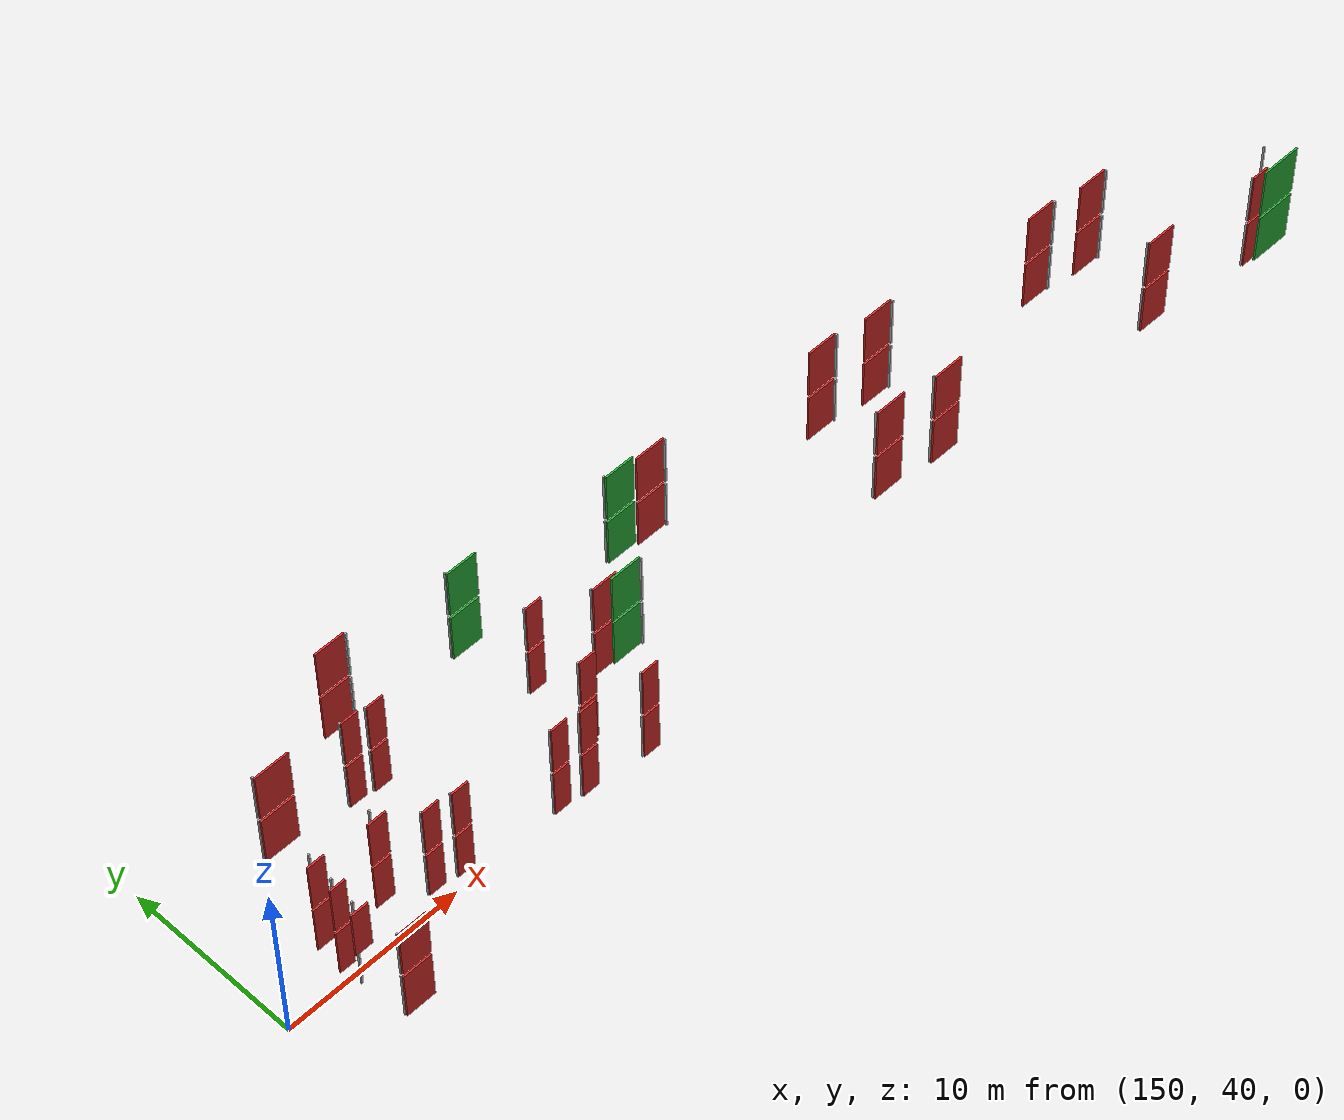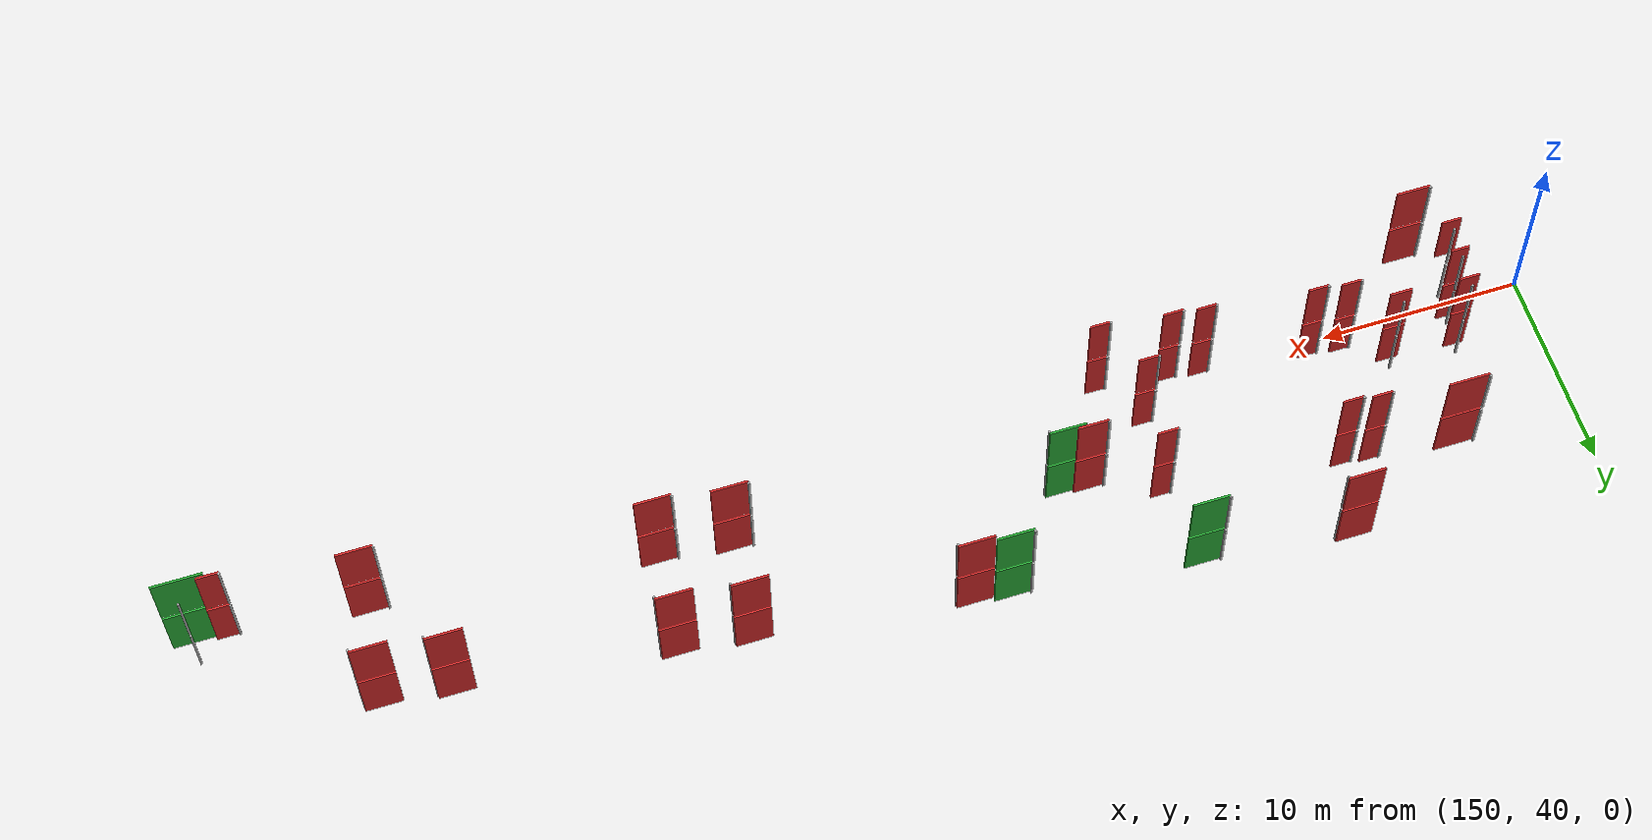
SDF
<sdf version="1.6">
 <world name="default">
  <model name="pivot_153.8_39.5_0.0">
   <static>true</static>
   <pose>153.8300000000163 39.49000000022352 1.5 0 0 0</pose>
   <link name="pivot_link">
    <visual name="pivot_visual"><geometry><box><size>0.1 0.1 3</size></box></geometry></visual>
   </link>
  </model>
  <model name="pivot_166.0_40.0_0.0">
   <static>true</static>
   <pose>166.0100000000093 39.97000000020489 1.5 0 0 0</pose>
   <link name="pivot_link">
    <visual name="pivot_visual"><geometry><box><size>0.1 0.1 3</size></box></geometry></visual>
   </link>
  </model>
  <model name="door_166.0_40.0_0.0">
   <static>false</static>
   <pose>166.50500000000466 39.91000000014901 1.5 0 0 0</pose>
   <link name="door_link">
    <gravity>false</gravity>
    <visual name="door_visual">
     <geometry><box><size>0.9972462083198822 0.1 3</size></box></geometry>
     <material>
      <script><uri>file://media/materials/scripts/gazebo.material</uri><name>Gazebo/Red</name></script>
     </material>
    </visual>
   </link>
  </model>
  <model name="pivot_160.6_40.6_0.0">
   <static>true</static>
   <pose>160.64000000001397 40.62000000011176 1.5 0 0 0</pose>
   <link name="pivot_link">
    <visual name="pivot_visual"><geometry><box><size>0.1 0.1 3</size></box></geometry></visual>
   </link>
  </model>
  <model name="door_160.6_40.6_0.0">
   <static>false</static>
   <pose>161.1350000000093 40.56000000005588 1.5 0 0 0</pose>
   <link name="door_link">
    <gravity>false</gravity>
    <visual name="door_visual">
     <geometry><box><size>0.9972462083198822 0.1 3</size></box></geometry>
     <material>
      <script><uri>file://media/materials/scripts/gazebo.material</uri><name>Gazebo/Red</name></script>
     </material>
    </visual>
   </link>
  </model>
  <model name="pivot_191.9_47.0_0.0">
   <static>true</static>
   <pose>191.86999999999534 46.95999999996275 1.5 0 0 0</pose>
   <link name="pivot_link">
    <visual name="pivot_visual"><geometry><box><size>0.1 0.1 3</size></box></geometry></visual>
   </link>
  </model>
  <model name="door_191.9_47.0_0.0">
   <static>false</static>
   <pose>190.97500000000582 47.06499999994412 1.5 0 0 0</pose>
   <link name="door_link">
    <gravity>false</gravity>
    <visual name="door_visual">
     <geometry><box><size>1.8022763383869123 0.1 3</size></box></geometry>
     <material>
      <script><uri>file://media/materials/scripts/gazebo.material</uri><name>Gazebo/Red</name></script>
     </material>
    </visual>
   </link>
  </model>
  <model name="pivot_181.5_48.2_0.0">
   <static>true</static>
   <pose>181.53000000002794 48.200000000186265 1.5 0 0 0</pose>
   <link name="pivot_link">
    <visual name="pivot_visual"><geometry><box><size>0.1 0.1 3</size></box></geometry></visual>
   </link>
  </model>
  <model name="door_181.5_48.2_0.0">
   <static>false</static>
   <pose>180.6350000000093 48.31000000005588 1.5 0 0 0</pose>
   <link name="door_link">
    <gravity>false</gravity>
    <visual name="door_visual">
     <geometry><box><size>1.8034688796923075 0.1 3</size></box></geometry>
     <material>
      <script><uri>file://media/materials/scripts/gazebo.material</uri><name>Gazebo/Red</name></script>
     </material>
    </visual>
   </link>
  </model>
  <model name="pivot_154.0_41.0_0.0">
   <static>true</static>
   <pose>154.02000000001863 41.02000000001863 1.5 0 0 0</pose>
   <link name="pivot_link">
    <visual name="pivot_visual"><geometry><box><size>0.1 0.1 3</size></box></geometry></visual>
   </link>
  </model>
  <model name="door_154.0_41.0_0.0">
   <static>false</static>
   <pose>153.9649999999965 40.574999999953434 1.5 0 0 0</pose>
   <link name="door_link">
    <gravity>false</gravity>
    <visual name="door_visual">
     <geometry><box><size>0.8967719889926413 0.1 3</size></box></geometry>
     <material>
      <script><uri>file://media/materials/scripts/gazebo.material</uri><name>Gazebo/Red</name></script>
     </material>
    </visual>
   </link>
  </model>
  <model name="pivot_167.6_39.8_0.0">
   <static>true</static>
   <pose>167.59999999997672 39.77999999979511 1.5 0 0 0</pose>
   <link name="pivot_link">
    <visual name="pivot_visual"><geometry><box><size>0.1 0.1 3</size></box></geometry></visual>
   </link>
  </model>
  <model name="door_167.6_39.8_0.0">
   <static>false</static>
   <pose>168.09500000000116 39.71999999997206 1.5 0 0 0</pose>
   <link name="door_link">
    <gravity>false</gravity>
    <visual name="door_visual">
     <geometry><box><size>0.9972462083216332 0.1 3</size></box></geometry>
     <material>
      <script><uri>file://media/materials/scripts/gazebo.material</uri><name>Gazebo/Red</name></script>
     </material>
    </visual>
   </link>
  </model>
  <model name="pivot_195.3_46.5_0.0">
   <static>true</static>
   <pose>195.30999999999767 46.54000000003725 1.5 0 0 0</pose>
   <link name="pivot_link">
    <visual name="pivot_visual"><geometry><box><size>0.1 0.1 3</size></box></geometry></visual>
   </link>
  </model>
  <model name="door_195.3_46.5_0.0">
   <static>false</static>
   <pose>194.41500000000815 46.64999999990687 1.5 0 0 0</pose>
   <link name="door_link">
    <gravity>false</gravity>
    <visual name="door_visual">
     <geometry><box><size>1.8034688796345346 0.1 3</size></box></geometry>
     <material>
      <script><uri>file://media/materials/scripts/gazebo.material</uri><name>Gazebo/Red</name></script>
     </material>
    </visual>
   </link>
  </model>
  <model name="pivot_205.6_45.3_0.0">
   <static>true</static>
   <pose>205.64000000001397 45.299999999813735 1.5 0 0 0</pose>
   <link name="pivot_link">
    <visual name="pivot_visual"><geometry><box><size>0.1 0.1 3</size></box></geometry></visual>
   </link>
  </model>
  <model name="door_205.6_45.3_0.0">
   <static>false</static>
   <pose>204.74499999999534 45.40499999979511 1.5 0 0 0</pose>
   <link name="door_link">
    <gravity>false</gravity>
    <visual name="door_visual">
     <geometry><box><size>1.8022763384447233 0.1 3</size></box></geometry>
     <material>
      <script><uri>file://media/materials/scripts/gazebo.material</uri><name>Gazebo/Red</name></script>
     </material>
    </visual>
   </link>
  </model>
  <model name="pivot_155.3_47.4_0.0">
   <static>true</static>
   <pose>155.2600000000093 47.43999999994412 1.5 0 0 0</pose>
   <link name="pivot_link">
    <visual name="pivot_visual"><geometry><box><size>0.1 0.1 3</size></box></geometry></visual>
   </link>
  </model>
  <model name="door_155.3_47.4_0.0">
   <static>false</static>
   <pose>156.25500000000466 47.32000000006519 1.5 0 0 0</pose>
   <link name="door_link">
    <gravity>false</gravity>
    <visual name="door_visual">
     <geometry><box><size>2.004420115606183 0.1 3</size></box></geometry>
     <material>
      <script><uri>file://media/materials/scripts/gazebo.material</uri><name>Gazebo/Red</name></script>
     </material>
    </visual>
   </link>
  </model>
  <model name="pivot_159.9_46.9_0.0">
   <static>true</static>
   <pose>159.89000000001397 46.87999999988824 1.5 0 0 0</pose>
   <link name="pivot_link">
    <visual name="pivot_visual"><geometry><box><size>0.1 0.1 3</size></box></geometry></visual>
   </link>
  </model>
  <model name="door_159.9_46.9_0.0">
   <static>false</static>
   <pose>160.3850000000093 46.81999999983236 1.5 0 0 0</pose>
   <link name="door_link">
    <gravity>false</gravity>
    <visual name="door_visual">
     <geometry><box><size>0.9972462083198822 0.1 3</size></box></geometry>
     <material>
      <script><uri>file://media/materials/scripts/gazebo.material</uri><name>Gazebo/Red</name></script>
     </material>
    </visual>
   </link>
  </model>
  <model name="pivot_161.3_46.7_0.0">
   <static>true</static>
   <pose>161.2600000000093 46.72000000020489 1.5 0 0 0</pose>
   <link name="pivot_link">
    <visual name="pivot_visual"><geometry><box><size>0.1 0.1 3</size></box></geometry></visual>
   </link>
  </model>
  <model name="door_161.3_46.7_0.0">
   <static>false</static>
   <pose>161.7600000000093 46.66000000014901 1.5 0 0 0</pose>
   <link name="door_link">
    <gravity>false</gravity>
    <visual name="door_visual">
     <geometry><box><size>1.0071742649744493 0.1 3</size></box></geometry>
     <material>
      <script><uri>file://media/materials/scripts/gazebo.material</uri><name>Gazebo/Red</name></script>
     </material>
    </visual>
   </link>
  </model>
  <model name="pivot_170.0_45.7_0.0">
   <static>true</static>
   <pose>169.9899999999907 45.669999999925494 1.5 0 0 0</pose>
   <link name="pivot_link">
    <visual name="pivot_visual"><geometry><box><size>0.1 0.1 3</size></box></geometry></visual>
   </link>
  </model>
  <model name="door_170.0_45.7_0.0">
   <static>false</static>
   <pose>170.48499999998603 45.609999999869615 1.5 0 0 0</pose>
   <link name="door_link">
    <gravity>false</gravity>
    <visual name="door_visual">
     <geometry><box><size>0.9972462083198822 0.1 3</size></box></geometry>
     <material>
      <script><uri>file://media/materials/scripts/gazebo.material</uri><name>Gazebo/Red</name></script>
     </material>
    </visual>
   </link>
  </model>
  <model name="pivot_175.7_44.0_0.0">
   <static>true</static>
   <pose>175.70000000001164 43.97000000020489 1.5 0 0 0</pose>
   <link name="pivot_link">
    <visual name="pivot_visual"><geometry><box><size>0.1 0.1 3</size></box></geometry></visual>
   </link>
  </model>
  <model name="door_175.7_44.0_0.0">
   <static>false</static>
   <pose>174.80499999999302 44.075000000419095 1.5 0 0 0</pose>
   <link name="door_link">
    <gravity>false</gravity>
    <visual name="door_visual">
     <geometry><box><size>1.802276338498982 0.1 3</size></box></geometry>
     <material>
      <script><uri>file://media/materials/scripts/gazebo.material</uri><name>Gazebo/Green</name></script>
     </material>
    </visual>
   </link>
  </model>
  <model name="pivot_189.6_42.3_0.0">
   <static>true</static>
   <pose>189.59999999997672 42.299999999813735 1.5 0 0 0</pose>
   <link name="pivot_link">
    <visual name="pivot_visual"><geometry><box><size>0.1 0.1 3</size></box></geometry></visual>
   </link>
  </model>
  <model name="door_189.6_42.3_0.0">
   <static>false</static>
   <pose>190.5 42.18999999994412 1.5 0 0 0</pose>
   <link name="door_link">
    <gravity>false</gravity>
    <visual name="door_visual">
     <geometry><box><size>1.8133946068224918 0.1 3</size></box></geometry>
     <material>
      <script><uri>file://media/materials/scripts/gazebo.material</uri><name>Gazebo/Red</name></script>
     </material>
    </visual>
   </link>
  </model>
  <model name="pivot_193.1_41.9_0.0">
   <static>true</static>
   <pose>193.14000000001397 41.87000000011176 1.5 0 0 0</pose>
   <link name="pivot_link">
    <visual name="pivot_visual"><geometry><box><size>0.1 0.1 3</size></box></geometry></visual>
   </link>
  </model>
  <model name="door_193.1_41.9_0.0">
   <static>false</static>
   <pose>194.0350000000035 41.765000000130385 1.5 0 0 0</pose>
   <link name="door_link">
    <gravity>false</gravity>
    <visual name="door_visual">
     <geometry><box><size>1.8022763383869123 0.1 3</size></box></geometry>
     <material>
      <script><uri>file://media/materials/scripts/gazebo.material</uri><name>Gazebo/Red</name></script>
     </material>
    </visual>
   </link>
  </model>
  <model name="pivot_206.7_40.2_0.0">
   <static>true</static>
   <pose>206.6699999999837 40.24000000022352 1.5 0 0 0</pose>
   <link name="pivot_link">
    <visual name="pivot_visual"><geometry><box><size>0.1 0.1 3</size></box></geometry></visual>
   </link>
  </model>
  <model name="door_206.7_40.2_0.0">
   <static>false</static>
   <pose>207.55999999999767 40.13500000000931 1.5 0 0 0</pose>
   <link name="door_link">
    <gravity>false</gravity>
    <visual name="door_visual">
     <geometry><box><size>1.7923448329714338 0.1 3</size></box></geometry>
     <material>
      <script><uri>file://media/materials/scripts/gazebo.material</uri><name>Gazebo/Red</name></script>
     </material>
    </visual>
   </link>
  </model>
  <model name="pivot_178.0_48.6_0.0">
   <static>true</static>
   <pose>177.96000000002095 48.62999999988824 1.5 0 0 0</pose>
   <link name="pivot_link">
    <visual name="pivot_visual"><geometry><box><size>0.1 0.1 3</size></box></geometry></visual>
   </link>
  </model>
  <model name="door_178.0_48.6_0.0">
   <static>false</static>
   <pose>178.85500000003958 48.519999999785796 1.5 0 0 0</pose>
   <link name="door_link">
    <gravity>false</gravity>
    <visual name="door_visual">
     <geometry><box><size>1.803468879749112 0.1 3</size></box></geometry>
     <material>
      <script><uri>file://media/materials/scripts/gazebo.material</uri><name>Gazebo/Green</name></script>
     </material>
    </visual>
   </link>
  </model>
  <model name="pivot_168.9_49.7_0.0">
   <static>true</static>
   <pose>168.94000000000233 49.72000000020489 1.5 0 0 0</pose>
   <link name="pivot_link">
    <visual name="pivot_visual"><geometry><box><size>0.1 0.1 3</size></box></geometry></visual>
   </link>
  </model>
  <model name="door_168.9_49.7_0.0">
   <static>false</static>
   <pose>169.83500000002095 49.61500000022352 1.5 0 0 0</pose>
   <link name="door_link">
    <gravity>false</gravity>
    <visual name="door_visual">
     <geometry><box><size>1.8022763384447233 0.1 3</size></box></geometry>
     <material>
      <script><uri>file://media/materials/scripts/gazebo.material</uri><name>Gazebo/Green</name></script>
     </material>
    </visual>
   </link>
  </model>
  <model name="pivot_163.5_50.4_0.0">
   <static>true</static>
   <pose>163.46000000002095 50.37999999988824 1.5 0 0 0</pose>
   <link name="pivot_link">
    <visual name="pivot_visual"><geometry><box><size>0.1 0.1 3</size></box></geometry></visual>
   </link>
  </model>
  <model name="door_163.5_50.4_0.0">
   <static>false</static>
   <pose>162.57000000000698 50.484999999869615 1.5 0 0 0</pose>
   <link name="door_link">
    <gravity>false</gravity>
    <visual name="door_visual">
     <geometry><box><size>1.7923448329168745 0.1 3</size></box></geometry>
     <material>
      <script><uri>file://media/materials/scripts/gazebo.material</uri><name>Gazebo/Red</name></script>
     </material>
    </visual>
   </link>
  </model>
  <model name="pivot_172.9_44.3_0.0">
   <static>true</static>
   <pose>172.86999999999534 44.31000000005588 1.5 0 0 0</pose>
   <link name="pivot_link">
    <visual name="pivot_visual"><geometry><box><size>0.1 0.1 3</size></box></geometry></visual>
   </link>
  </model>
  <model name="door_172.9_44.3_0.0">
   <static>false</static>
   <pose>173.6149999999907 44.21999999997206 1.5 0 0 0</pose>
   <link name="door_link">
    <gravity>false</gravity>
    <visual name="door_visual">
     <geometry><box><size>1.5008331019912227 0.1 3</size></box></geometry>
     <material>
      <script><uri>file://media/materials/scripts/gazebo.material</uri><name>Gazebo/Red</name></script>
     </material>
    </visual>
   </link>
  </model>
  <model name="pivot_213.6_39.4_0.0">
   <static>true</static>
   <pose>213.5900000000256 39.41000000014901 1.5 0 0 0</pose>
   <link name="pivot_link">
    <visual name="pivot_visual"><geometry><box><size>0.1 0.1 3</size></box></geometry></visual>
   </link>
  </model>
  <model name="door_213.6_39.4_0.0">
   <static>false</static>
   <pose>214.1350000000093 39.34499999997206 1.5 0 0 0</pose>
   <link name="door_link">
    <gravity>false</gravity>
    <visual name="door_visual">
     <geometry><box><size>1.097724920014552 0.1 3</size></box></geometry>
     <material>
      <script><uri>file://media/materials/scripts/gazebo.material</uri><name>Gazebo/Red</name></script>
     </material>
    </visual>
   </link>
  </model>
  <model name="pivot_215.7_40.4_0.0">
   <static>true</static>
   <pose>215.65000000002328 40.37000000011176 1.5 0 0 0</pose>
   <link name="pivot_link">
    <visual name="pivot_visual"><geometry><box><size>0.1 0.1 3</size></box></geometry></visual>
   </link>
  </model>
  <model name="door_215.7_40.4_0.0">
   <static>false</static>
   <pose>215.50000000011642 39.16000000014901 1.5 0 0 0</pose>
   <link name="door_link">
    <gravity>false</gravity>
    <visual name="door_visual">
     <geometry><box><size>2.438524143724567 0.1 3</size></box></geometry>
     <material>
      <script><uri>file://media/materials/scripts/gazebo.material</uri><name>Gazebo/Green</name></script>
     </material>
    </visual>
   </link>
  </model>
  <model name="pivot_209.0_44.9_0.0">
   <static>true</static>
   <pose>208.9899999999907 44.890000000130385 1.5 0 0 0</pose>
   <link name="pivot_link">
    <visual name="pivot_visual"><geometry><box><size>0.1 0.1 3</size></box></geometry></visual>
   </link>
  </model>
  <model name="door_209.0_44.9_0.0">
   <static>false</static>
   <pose>208.09500000000116 45.0 1.5 0 0 0</pose>
   <link name="door_link">
    <gravity>false</gravity>
    <visual name="door_visual">
     <geometry><box><size>1.8034688796345346 0.1 3</size></box></geometry>
     <material>
      <script><uri>file://media/materials/scripts/gazebo.material</uri><name>Gazebo/Red</name></script>
     </material>
    </visual>
   </link>
  </model>
  <model name="pivot_169.5_41.8_0.0">
   <static>true</static>
   <pose>169.5100000000093 41.75 1.5 0 0 0</pose>
   <link name="pivot_link">
    <visual name="pivot_visual"><geometry><box><size>0.1 0.1 3</size></box></geometry></visual>
   </link>
  </model>
  <model name="door_169.5_41.8_0.0">
   <static>false</static>
   <pose>170.0100000000093 41.68999999994412 1.5 0 0 0</pose>
   <link name="door_link">
    <gravity>false</gravity>
    <visual name="door_visual">
     <geometry><box><size>1.0071742649744493 0.1 3</size></box></geometry>
     <material>
      <script><uri>file://media/materials/scripts/gazebo.material</uri><name>Gazebo/Red</name></script>
     </material>
    </visual>
   </link>
  </model>
  <model name="pivot_154.2_42.6_0.0">
   <static>true</static>
   <pose>154.21000000002095 42.64999999990687 1.5 0 0 0</pose>
   <link name="pivot_link">
    <visual name="pivot_visual"><geometry><box><size>0.1 0.1 3</size></box></geometry></visual>
   </link>
  </model>
  <model name="door_154.2_42.6_0.0">
   <static>false</static>
   <pose>154.15000000002328 42.15500000002794 1.5 0 0 0</pose>
   <link name="door_link">
    <gravity>false</gravity>
    <visual name="door_visual">
     <geometry><box><size>0.997246208074735 0.1 3</size></box></geometry>
     <material>
      <script><uri>file://media/materials/scripts/gazebo.material</uri><name>Gazebo/Red</name></script>
     </material>
    </visual>
   </link>
  </model>
  <model name="pivot_157.6_42.5_0.0">
   <static>true</static>
   <pose>157.5800000000163 42.49000000022352 1.5 0 0 0</pose>
   <link name="pivot_link">
    <visual name="pivot_visual"><geometry><box><size>0.1 0.1 3</size></box></geometry></visual>
   </link>
  </model>
  <model name="door_157.6_42.5_0.0">
   <static>false</static>
   <pose>157.51500000001397 41.94500000006519 1.5 0 0 0</pose>
   <link name="door_link">
    <gravity>false</gravity>
    <visual name="door_visual">
     <geometry><box><size>1.0977249203199801 0.1 3</size></box></geometry>
     <material>
      <script><uri>file://media/materials/scripts/gazebo.material</uri><name>Gazebo/Red</name></script>
     </material>
    </visual>
   </link>
  </model>
  <model name="pivot_154.0_37.0_0.0">
   <static>true</static>
   <pose>154.03999999997905 36.950000000186265 1.5 0 0 0</pose>
   <link name="pivot_link">
    <visual name="pivot_visual"><geometry><box><size>0.1 0.1 3</size></box></geometry></visual>
   </link>
  </model>
  <model name="door_154.0_37.0_0.0">
   <static>false</static>
   <pose>154.86999999999534 36.85000000009313 1.5 0 0 0</pose>
   <link name="door_link">
    <gravity>false</gravity>
    <visual name="door_visual">
     <geometry><box><size>1.6720047847367918 0.1 3</size></box></geometry>
     <material>
      <script><uri>file://media/materials/scripts/gazebo.material</uri><name>Gazebo/Red</name></script>
     </material>
    </visual>
   </link>
  </model>
  <model name="pivot_159.0_40.8_0.0">
   <static>true</static>
   <pose>159.04999999998836 40.81000000005588 1.5 0 0 0</pose>
   <link name="pivot_link">
    <visual name="pivot_visual"><geometry><box><size>0.1 0.1 3</size></box></geometry></visual>
   </link>
  </model>
  <model name="door_159.0_40.8_0.0">
   <static>false</static>
   <pose>159.5449999999837 40.75 1.5 0 0 0</pose>
   <link name="door_link">
    <gravity>false</gravity>
    <visual name="door_visual">
     <geometry><box><size>0.9972462083198822 0.1 3</size></box></geometry>
     <material>
      <script><uri>file://media/materials/scripts/gazebo.material</uri><name>Gazebo/Red</name></script>
     </material>
    </visual>
   </link>
  </model>
  <model name="pivot_171.1_39.4_0.0">
   <static>true</static>
   <pose>171.07000000000698 39.359999999869615 1.5 0 0 0</pose>
   <link name="pivot_link">
    <visual name="pivot_visual"><geometry><box><size>0.1 0.1 3</size></box></geometry></visual>
   </link>
  </model>
  <model name="door_171.1_39.4_0.0">
   <static>false</static>
   <pose>171.56500000000233 39.300000000046566 1.5 0 0 0</pose>
   <link name="door_link">
    <gravity>false</gravity>
    <visual name="door_visual">
     <geometry><box><size>0.9972462082638486 0.1 3</size></box></geometry>
     <material>
      <script><uri>file://media/materials/scripts/gazebo.material</uri><name>Gazebo/Red</name></script>
     </material>
    </visual>
   </link>
  </model>
  <model name="pivot_153.8_39.5_3.2">
   <static>true</static>
   <pose>153.8300000000163 39.49000000022352 4.7 0 0 0</pose>
   <link name="pivot_link">
    <visual name="pivot_visual"><geometry><box><size>0.1 0.1 3</size></box></geometry></visual>
   </link>
  </model>
  <model name="door_153.8_39.5_3.2">
   <static>false</static>
   <pose>153.77499999999418 38.99500000011176 4.7 0 0 0</pose>
   <link name="door_link">
    <gravity>false</gravity>
    <visual name="door_visual">
     <geometry><box><size>0.9960923654221514 0.1 3</size></box></geometry>
     <material>
      <script><uri>file://media/materials/scripts/gazebo.material</uri><name>Gazebo/Red</name></script>
     </material>
    </visual>
   </link>
  </model>
  <model name="pivot_166.0_40.0_3.2">
   <static>true</static>
   <pose>166.0100000000093 39.97000000020489 4.7 0 0 0</pose>
   <link name="pivot_link">
    <visual name="pivot_visual"><geometry><box><size>0.1 0.1 3</size></box></geometry></visual>
   </link>
  </model>
  <model name="door_166.0_40.0_3.2">
   <static>false</static>
   <pose>166.50500000000466 39.91000000014901 4.7 0 0 0</pose>
   <link name="door_link">
    <gravity>false</gravity>
    <visual name="door_visual">
     <geometry><box><size>0.9972462083198822 0.1 3</size></box></geometry>
     <material>
      <script><uri>file://media/materials/scripts/gazebo.material</uri><name>Gazebo/Red</name></script>
     </material>
    </visual>
   </link>
  </model>
  <model name="pivot_160.6_40.6_3.2">
   <static>true</static>
   <pose>160.64000000001397 40.62000000011176 4.7 0 0 0</pose>
   <link name="pivot_link">
    <visual name="pivot_visual"><geometry><box><size>0.1 0.1 3</size></box></geometry></visual>
   </link>
  </model>
  <model name="door_160.6_40.6_3.2">
   <static>false</static>
   <pose>161.1350000000093 40.56000000005588 4.7 0 0 0</pose>
   <link name="door_link">
    <gravity>false</gravity>
    <visual name="door_visual">
     <geometry><box><size>0.9972462083198822 0.1 3</size></box></geometry>
     <material>
      <script><uri>file://media/materials/scripts/gazebo.material</uri><name>Gazebo/Red</name></script>
     </material>
    </visual>
   </link>
  </model>
  <model name="pivot_191.9_47.0_3.2">
   <static>true</static>
   <pose>191.86999999999534 46.95999999996275 4.7 0 0 0</pose>
   <link name="pivot_link">
    <visual name="pivot_visual"><geometry><box><size>0.1 0.1 3</size></box></geometry></visual>
   </link>
  </model>
  <model name="door_191.9_47.0_3.2">
   <static>false</static>
   <pose>190.97500000000582 47.06499999994412 4.7 0 0 0</pose>
   <link name="door_link">
    <gravity>false</gravity>
    <visual name="door_visual">
     <geometry><box><size>1.8022763383869123 0.1 3</size></box></geometry>
     <material>
      <script><uri>file://media/materials/scripts/gazebo.material</uri><name>Gazebo/Red</name></script>
     </material>
    </visual>
   </link>
  </model>
  <model name="pivot_181.5_48.2_3.2">
   <static>true</static>
   <pose>181.53000000002794 48.200000000186265 4.7 0 0 0</pose>
   <link name="pivot_link">
    <visual name="pivot_visual"><geometry><box><size>0.1 0.1 3</size></box></geometry></visual>
   </link>
  </model>
  <model name="door_181.5_48.2_3.2">
   <static>false</static>
   <pose>180.6350000000093 48.31000000005588 4.7 0 0 0</pose>
   <link name="door_link">
    <gravity>false</gravity>
    <visual name="door_visual">
     <geometry><box><size>1.8034688796923075 0.1 3</size></box></geometry>
     <material>
      <script><uri>file://media/materials/scripts/gazebo.material</uri><name>Gazebo/Red</name></script>
     </material>
    </visual>
   </link>
  </model>
  <model name="pivot_154.0_41.0_3.2">
   <static>true</static>
   <pose>154.02000000001863 41.02000000001863 4.7 0 0 0</pose>
   <link name="pivot_link">
    <visual name="pivot_visual"><geometry><box><size>0.1 0.1 3</size></box></geometry></visual>
   </link>
  </model>
  <model name="door_154.0_41.0_3.2">
   <static>false</static>
   <pose>153.9649999999965 40.574999999953434 4.7 0 0 0</pose>
   <link name="door_link">
    <gravity>false</gravity>
    <visual name="door_visual">
     <geometry><box><size>0.8967719889926413 0.1 3</size></box></geometry>
     <material>
      <script><uri>file://media/materials/scripts/gazebo.material</uri><name>Gazebo/Red</name></script>
     </material>
    </visual>
   </link>
  </model>
  <model name="pivot_167.6_39.8_3.2">
   <static>true</static>
   <pose>167.59999999997672 39.77999999979511 4.7 0 0 0</pose>
   <link name="pivot_link">
    <visual name="pivot_visual"><geometry><box><size>0.1 0.1 3</size></box></geometry></visual>
   </link>
  </model>
  <model name="door_167.6_39.8_3.2">
   <static>false</static>
   <pose>168.09500000000116 39.71999999997206 4.7 0 0 0</pose>
   <link name="door_link">
    <gravity>false</gravity>
    <visual name="door_visual">
     <geometry><box><size>0.9972462083216332 0.1 3</size></box></geometry>
     <material>
      <script><uri>file://media/materials/scripts/gazebo.material</uri><name>Gazebo/Red</name></script>
     </material>
    </visual>
   </link>
  </model>
  <model name="pivot_195.3_46.5_3.2">
   <static>true</static>
   <pose>195.30999999999767 46.54000000003725 4.7 0 0 0</pose>
   <link name="pivot_link">
    <visual name="pivot_visual"><geometry><box><size>0.1 0.1 3</size></box></geometry></visual>
   </link>
  </model>
  <model name="door_195.3_46.5_3.2">
   <static>false</static>
   <pose>194.41500000000815 46.64999999990687 4.7 0 0 0</pose>
   <link name="door_link">
    <gravity>false</gravity>
    <visual name="door_visual">
     <geometry><box><size>1.8034688796345346 0.1 3</size></box></geometry>
     <material>
      <script><uri>file://media/materials/scripts/gazebo.material</uri><name>Gazebo/Red</name></script>
     </material>
    </visual>
   </link>
  </model>
  <model name="pivot_205.6_45.3_3.2">
   <static>true</static>
   <pose>205.64000000001397 45.299999999813735 4.7 0 0 0</pose>
   <link name="pivot_link">
    <visual name="pivot_visual"><geometry><box><size>0.1 0.1 3</size></box></geometry></visual>
   </link>
  </model>
  <model name="door_205.6_45.3_3.2">
   <static>false</static>
   <pose>204.74499999999534 45.40499999979511 4.7 0 0 0</pose>
   <link name="door_link">
    <gravity>false</gravity>
    <visual name="door_visual">
     <geometry><box><size>1.8022763384447233 0.1 3</size></box></geometry>
     <material>
      <script><uri>file://media/materials/scripts/gazebo.material</uri><name>Gazebo/Red</name></script>
     </material>
    </visual>
   </link>
  </model>
  <model name="pivot_155.3_47.4_3.2">
   <static>true</static>
   <pose>155.2600000000093 47.43999999994412 4.7 0 0 0</pose>
   <link name="pivot_link">
    <visual name="pivot_visual"><geometry><box><size>0.1 0.1 3</size></box></geometry></visual>
   </link>
  </model>
  <model name="door_155.3_47.4_3.2">
   <static>false</static>
   <pose>156.25500000000466 47.32000000006519 4.7 0 0 0</pose>
   <link name="door_link">
    <gravity>false</gravity>
    <visual name="door_visual">
     <geometry><box><size>2.004420115606183 0.1 3</size></box></geometry>
     <material>
      <script><uri>file://media/materials/scripts/gazebo.material</uri><name>Gazebo/Red</name></script>
     </material>
    </visual>
   </link>
  </model>
  <model name="pivot_159.9_46.9_3.2">
   <static>true</static>
   <pose>159.89000000001397 46.87999999988824 4.7 0 0 0</pose>
   <link name="pivot_link">
    <visual name="pivot_visual"><geometry><box><size>0.1 0.1 3</size></box></geometry></visual>
   </link>
  </model>
  <model name="door_159.9_46.9_3.2">
   <static>false</static>
   <pose>160.3850000000093 46.81999999983236 4.7 0 0 0</pose>
   <link name="door_link">
    <gravity>false</gravity>
    <visual name="door_visual">
     <geometry><box><size>0.9972462083198822 0.1 3</size></box></geometry>
     <material>
      <script><uri>file://media/materials/scripts/gazebo.material</uri><name>Gazebo/Red</name></script>
     </material>
    </visual>
   </link>
  </model>
  <model name="pivot_161.3_46.7_3.2">
   <static>true</static>
   <pose>161.2600000000093 46.72000000020489 4.7 0 0 0</pose>
   <link name="pivot_link">
    <visual name="pivot_visual"><geometry><box><size>0.1 0.1 3</size></box></geometry></visual>
   </link>
  </model>
  <model name="door_161.3_46.7_3.2">
   <static>false</static>
   <pose>161.7600000000093 46.66000000014901 4.7 0 0 0</pose>
   <link name="door_link">
    <gravity>false</gravity>
    <visual name="door_visual">
     <geometry><box><size>1.0071742649744493 0.1 3</size></box></geometry>
     <material>
      <script><uri>file://media/materials/scripts/gazebo.material</uri><name>Gazebo/Red</name></script>
     </material>
    </visual>
   </link>
  </model>
  <model name="pivot_170.0_45.7_3.2">
   <static>true</static>
   <pose>169.9899999999907 45.669999999925494 4.7 0 0 0</pose>
   <link name="pivot_link">
    <visual name="pivot_visual"><geometry><box><size>0.1 0.1 3</size></box></geometry></visual>
   </link>
  </model>
  <model name="door_170.0_45.7_3.2">
   <static>false</static>
   <pose>170.48499999998603 45.609999999869615 4.7 0 0 0</pose>
   <link name="door_link">
    <gravity>false</gravity>
    <visual name="door_visual">
     <geometry><box><size>0.9972462083198822 0.1 3</size></box></geometry>
     <material>
      <script><uri>file://media/materials/scripts/gazebo.material</uri><name>Gazebo/Red</name></script>
     </material>
    </visual>
   </link>
  </model>
  <model name="pivot_175.7_44.0_3.2">
   <static>true</static>
   <pose>175.70000000001164 43.97000000020489 4.7 0 0 0</pose>
   <link name="pivot_link">
    <visual name="pivot_visual"><geometry><box><size>0.1 0.1 3</size></box></geometry></visual>
   </link>
  </model>
  <model name="door_175.7_44.0_3.2">
   <static>false</static>
   <pose>174.80499999999302 44.075000000419095 4.7 0 0 0</pose>
   <link name="door_link">
    <gravity>false</gravity>
    <visual name="door_visual">
     <geometry><box><size>1.802276338498982 0.1 3</size></box></geometry>
     <material>
      <script><uri>file://media/materials/scripts/gazebo.material</uri><name>Gazebo/Green</name></script>
     </material>
    </visual>
   </link>
  </model>
  <model name="pivot_189.6_42.3_3.2">
   <static>true</static>
   <pose>189.59999999997672 42.299999999813735 4.7 0 0 0</pose>
   <link name="pivot_link">
    <visual name="pivot_visual"><geometry><box><size>0.1 0.1 3</size></box></geometry></visual>
   </link>
  </model>
  <model name="door_189.6_42.3_3.2">
   <static>false</static>
   <pose>190.5 42.18999999994412 4.7 0 0 0</pose>
   <link name="door_link">
    <gravity>false</gravity>
    <visual name="door_visual">
     <geometry><box><size>1.8133946068224918 0.1 3</size></box></geometry>
     <material>
      <script><uri>file://media/materials/scripts/gazebo.material</uri><name>Gazebo/Red</name></script>
     </material>
    </visual>
   </link>
  </model>
  <model name="pivot_193.1_41.9_3.2">
   <static>true</static>
   <pose>193.14000000001397 41.87000000011176 4.7 0 0 0</pose>
   <link name="pivot_link">
    <visual name="pivot_visual"><geometry><box><size>0.1 0.1 3</size></box></geometry></visual>
   </link>
  </model>
  <model name="door_193.1_41.9_3.2">
   <static>false</static>
   <pose>194.0350000000035 41.765000000130385 4.7 0 0 0</pose>
   <link name="door_link">
    <gravity>false</gravity>
    <visual name="door_visual">
     <geometry><box><size>1.8022763383869123 0.1 3</size></box></geometry>
     <material>
      <script><uri>file://media/materials/scripts/gazebo.material</uri><name>Gazebo/Red</name></script>
     </material>
    </visual>
   </link>
  </model>
  <model name="pivot_206.7_40.2_3.2">
   <static>true</static>
   <pose>206.6699999999837 40.24000000022352 4.7 0 0 0</pose>
   <link name="pivot_link">
    <visual name="pivot_visual"><geometry><box><size>0.1 0.1 3</size></box></geometry></visual>
   </link>
  </model>
  <model name="door_206.7_40.2_3.2">
   <static>false</static>
   <pose>207.55999999999767 40.13500000000931 4.7 0 0 0</pose>
   <link name="door_link">
    <gravity>false</gravity>
    <visual name="door_visual">
     <geometry><box><size>1.7923448329714338 0.1 3</size></box></geometry>
     <material>
      <script><uri>file://media/materials/scripts/gazebo.material</uri><name>Gazebo/Red</name></script>
     </material>
    </visual>
   </link>
  </model>
  <model name="pivot_178.0_48.6_3.2">
   <static>true</static>
   <pose>177.96000000002095 48.62999999988824 4.7 0 0 0</pose>
   <link name="pivot_link">
    <visual name="pivot_visual"><geometry><box><size>0.1 0.1 3</size></box></geometry></visual>
   </link>
  </model>
  <model name="door_178.0_48.6_3.2">
   <static>false</static>
   <pose>178.85500000003958 48.519999999785796 4.7 0 0 0</pose>
   <link name="door_link">
    <gravity>false</gravity>
    <visual name="door_visual">
     <geometry><box><size>1.803468879749112 0.1 3</size></box></geometry>
     <material>
      <script><uri>file://media/materials/scripts/gazebo.material</uri><name>Gazebo/Green</name></script>
     </material>
    </visual>
   </link>
  </model>
  <model name="pivot_168.9_49.7_3.2">
   <static>true</static>
   <pose>168.94000000000233 49.72000000020489 4.7 0 0 0</pose>
   <link name="pivot_link">
    <visual name="pivot_visual"><geometry><box><size>0.1 0.1 3</size></box></geometry></visual>
   </link>
  </model>
  <model name="door_168.9_49.7_3.2">
   <static>false</static>
   <pose>169.83500000002095 49.61500000022352 4.7 0 0 0</pose>
   <link name="door_link">
    <gravity>false</gravity>
    <visual name="door_visual">
     <geometry><box><size>1.8022763384447233 0.1 3</size></box></geometry>
     <material>
      <script><uri>file://media/materials/scripts/gazebo.material</uri><name>Gazebo/Green</name></script>
     </material>
    </visual>
   </link>
  </model>
  <model name="pivot_163.5_50.4_3.2">
   <static>true</static>
   <pose>163.46000000002095 50.37999999988824 4.7 0 0 0</pose>
   <link name="pivot_link">
    <visual name="pivot_visual"><geometry><box><size>0.1 0.1 3</size></box></geometry></visual>
   </link>
  </model>
  <model name="door_163.5_50.4_3.2">
   <static>false</static>
   <pose>162.57000000000698 50.484999999869615 4.7 0 0 0</pose>
   <link name="door_link">
    <gravity>false</gravity>
    <visual name="door_visual">
     <geometry><box><size>1.7923448329168745 0.1 3</size></box></geometry>
     <material>
      <script><uri>file://media/materials/scripts/gazebo.material</uri><name>Gazebo/Red</name></script>
     </material>
    </visual>
   </link>
  </model>
  <model name="pivot_172.9_44.3_3.2">
   <static>true</static>
   <pose>172.86999999999534 44.31000000005588 4.7 0 0 0</pose>
   <link name="pivot_link">
    <visual name="pivot_visual"><geometry><box><size>0.1 0.1 3</size></box></geometry></visual>
   </link>
  </model>
  <model name="door_172.9_44.3_3.2">
   <static>false</static>
   <pose>173.6149999999907 44.21999999997206 4.7 0 0 0</pose>
   <link name="door_link">
    <gravity>false</gravity>
    <visual name="door_visual">
     <geometry><box><size>1.5008331019912227 0.1 3</size></box></geometry>
     <material>
      <script><uri>file://media/materials/scripts/gazebo.material</uri><name>Gazebo/Red</name></script>
     </material>
    </visual>
   </link>
  </model>
  <model name="pivot_213.6_39.4_3.2">
   <static>true</static>
   <pose>213.5900000000256 39.41000000014901 4.7 0 0 0</pose>
   <link name="pivot_link">
    <visual name="pivot_visual"><geometry><box><size>0.1 0.1 3</size></box></geometry></visual>
   </link>
  </model>
  <model name="door_213.6_39.4_3.2">
   <static>false</static>
   <pose>214.1350000000093 39.34499999997206 4.7 0 0 0</pose>
   <link name="door_link">
    <gravity>false</gravity>
    <visual name="door_visual">
     <geometry><box><size>1.097724920014552 0.1 3</size></box></geometry>
     <material>
      <script><uri>file://media/materials/scripts/gazebo.material</uri><name>Gazebo/Red</name></script>
     </material>
    </visual>
   </link>
  </model>
  <model name="pivot_215.7_40.4_3.2">
   <static>true</static>
   <pose>215.65000000002328 40.37000000011176 4.7 0 0 0</pose>
   <link name="pivot_link">
    <visual name="pivot_visual"><geometry><box><size>0.1 0.1 3</size></box></geometry></visual>
   </link>
  </model>
  <model name="door_215.7_40.4_3.2">
   <static>false</static>
   <pose>215.50000000011642 39.16000000014901 4.7 0 0 0</pose>
   <link name="door_link">
    <gravity>false</gravity>
    <visual name="door_visual">
     <geometry><box><size>2.438524143724567 0.1 3</size></box></geometry>
     <material>
      <script><uri>file://media/materials/scripts/gazebo.material</uri><name>Gazebo/Green</name></script>
     </material>
    </visual>
   </link>
  </model>
  <model name="pivot_209.0_44.9_3.2">
   <static>true</static>
   <pose>208.9899999999907 44.890000000130385 4.7 0 0 0</pose>
   <link name="pivot_link">
    <visual name="pivot_visual"><geometry><box><size>0.1 0.1 3</size></box></geometry></visual>
   </link>
  </model>
  <model name="door_209.0_44.9_3.2">
   <static>false</static>
   <pose>208.09500000000116 45.0 4.7 0 0 0</pose>
   <link name="door_link">
    <gravity>false</gravity>
    <visual name="door_visual">
     <geometry><box><size>1.8034688796345346 0.1 3</size></box></geometry>
     <material>
      <script><uri>file://media/materials/scripts/gazebo.material</uri><name>Gazebo/Red</name></script>
     </material>
    </visual>
   </link>
  </model>
  <model name="pivot_169.5_41.8_3.2">
   <static>true</static>
   <pose>169.5100000000093 41.75 4.7 0 0 0</pose>
   <link name="pivot_link">
    <visual name="pivot_visual"><geometry><box><size>0.1 0.1 3</size></box></geometry></visual>
   </link>
  </model>
  <model name="door_169.5_41.8_3.2">
   <static>false</static>
   <pose>170.0100000000093 41.68999999994412 4.7 0 0 0</pose>
   <link name="door_link">
    <gravity>false</gravity>
    <visual name="door_visual">
     <geometry><box><size>1.0071742649744493 0.1 3</size></box></geometry>
     <material>
      <script><uri>file://media/materials/scripts/gazebo.material</uri><name>Gazebo/Red</name></script>
     </material>
    </visual>
   </link>
  </model>
  <model name="pivot_154.2_42.6_3.2">
   <static>true</static>
   <pose>154.21000000002095 42.64999999990687 4.7 0 0 0</pose>
   <link name="pivot_link">
    <visual name="pivot_visual"><geometry><box><size>0.1 0.1 3</size></box></geometry></visual>
   </link>
  </model>
  <model name="door_154.2_42.6_3.2">
   <static>false</static>
   <pose>154.15000000002328 42.15500000002794 4.7 0 0 0</pose>
   <link name="door_link">
    <gravity>false</gravity>
    <visual name="door_visual">
     <geometry><box><size>0.997246208074735 0.1 3</size></box></geometry>
     <material>
      <script><uri>file://media/materials/scripts/gazebo.material</uri><name>Gazebo/Red</name></script>
     </material>
    </visual>
   </link>
  </model>
  <model name="pivot_157.6_42.5_3.2">
   <static>true</static>
   <pose>157.5800000000163 42.49000000022352 4.7 0 0 0</pose>
   <link name="pivot_link">
    <visual name="pivot_visual"><geometry><box><size>0.1 0.1 3</size></box></geometry></visual>
   </link>
  </model>
  <model name="door_157.6_42.5_3.2">
   <static>false</static>
   <pose>157.51500000001397 41.94500000006519 4.7 0 0 0</pose>
   <link name="door_link">
    <gravity>false</gravity>
    <visual name="door_visual">
     <geometry><box><size>1.0977249203199801 0.1 3</size></box></geometry>
     <material>
      <script><uri>file://media/materials/scripts/gazebo.material</uri><name>Gazebo/Red</name></script>
     </material>
    </visual>
   </link>
  </model>
  <model name="pivot_154.0_37.0_3.2">
   <static>true</static>
   <pose>154.03999999997905 36.950000000186265 4.7 0 0 0</pose>
   <link name="pivot_link">
    <visual name="pivot_visual"><geometry><box><size>0.1 0.1 3</size></box></geometry></visual>
   </link>
  </model>
  <model name="door_154.0_37.0_3.2">
   <static>false</static>
   <pose>154.86999999999534 36.85000000009313 4.7 0 0 0</pose>
   <link name="door_link">
    <gravity>false</gravity>
    <visual name="door_visual">
     <geometry><box><size>1.6720047847367918 0.1 3</size></box></geometry>
     <material>
      <script><uri>file://media/materials/scripts/gazebo.material</uri><name>Gazebo/Red</name></script>
     </material>
    </visual>
   </link>
  </model>
  <model name="pivot_159.0_40.8_3.2">
   <static>true</static>
   <pose>159.04999999998836 40.81000000005588 4.7 0 0 0</pose>
   <link name="pivot_link">
    <visual name="pivot_visual"><geometry><box><size>0.1 0.1 3</size></box></geometry></visual>
   </link>
  </model>
  <model name="door_159.0_40.8_3.2">
   <static>false</static>
   <pose>159.5449999999837 40.75 4.7 0 0 0</pose>
   <link name="door_link">
    <gravity>false</gravity>
    <visual name="door_visual">
     <geometry><box><size>0.9972462083198822 0.1 3</size></box></geometry>
     <material>
      <script><uri>file://media/materials/scripts/gazebo.material</uri><name>Gazebo/Red</name></script>
     </material>
    </visual>
   </link>
  </model>
  <model name="pivot_171.1_39.4_3.2">
   <static>true</static>
   <pose>171.07000000000698 39.359999999869615 4.7 0 0 0</pose>
   <link name="pivot_link">
    <visual name="pivot_visual"><geometry><box><size>0.1 0.1 3</size></box></geometry></visual>
   </link>
  </model>
  <model name="door_171.1_39.4_3.2">
   <static>false</static>
   <pose>171.56500000000233 39.300000000046566 4.7 0 0 0</pose>
   <link name="door_link">
    <gravity>false</gravity>
    <visual name="door_visual">
     <geometry><box><size>0.9972462082638486 0.1 3</size></box></geometry>
     <material>
      <script><uri>file://media/materials/scripts/gazebo.material</uri><name>Gazebo/Red</name></script>
     </material>
    </visual>
   </link>
  </model>
 </world>
</sdf>
